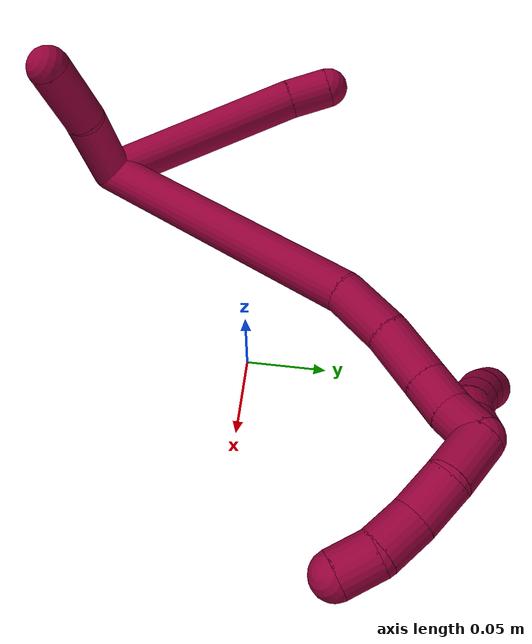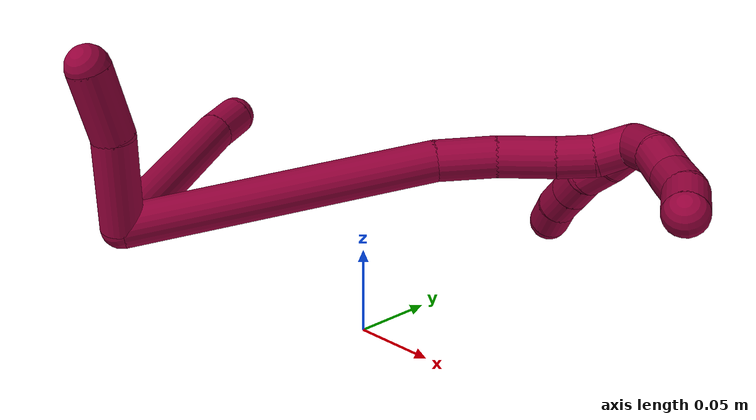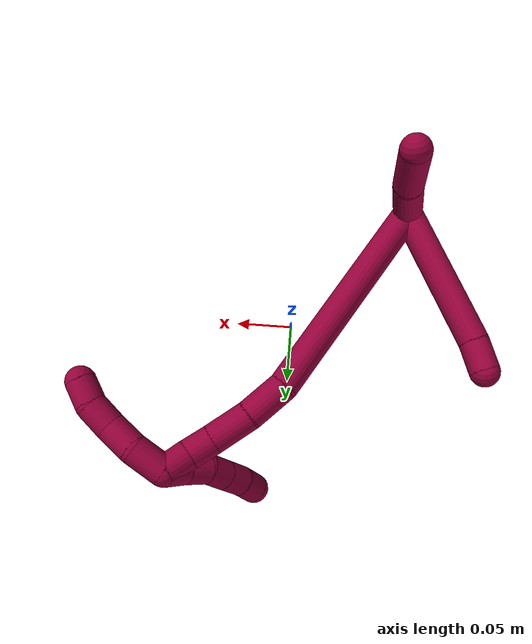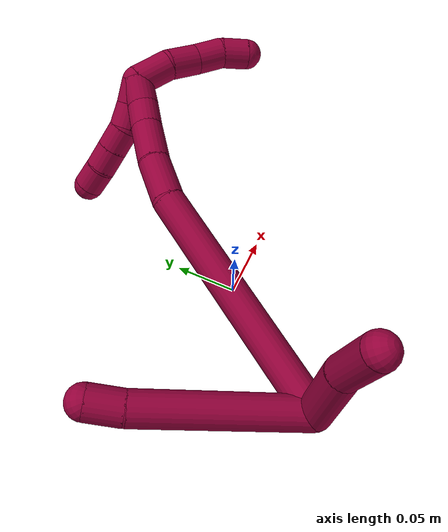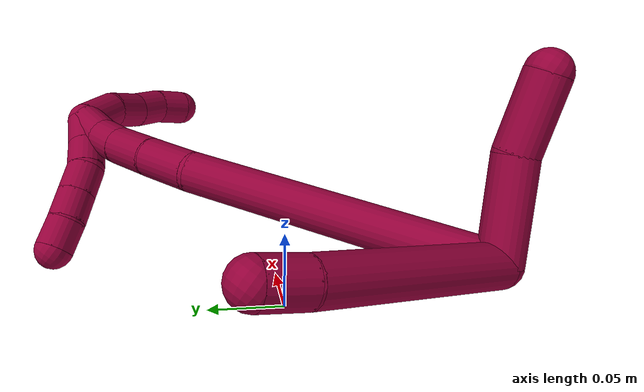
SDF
<sdf version="1.7">
 <world name="default">
  <model name="8">
   <static>0</static>
   <link name="8">
    <collision name="collision-cylinder-e_1_2_8">
     <pose>-0.02275 0.048056 -0.031876 -2.15648 -0.375766 0.680938</pose>
     <geometry><cylinder><radius>0.0125</radius><length>0.123984</length></cylinder></geometry>
     <surface>
      <friction><ode><mu>1.16</mu><mu2>1.16</mu2><slip1>0</slip1><slip2>0</slip2></ode></friction>
      <contact><ode><kp>1e+06</kp><kd>1</kd><max_vel>0</max_vel><min_depth>0.001</min_depth></ode></contact>
     </surface>
    </collision>
    <visual name="visual-cylinder-e_1_2_8">
     <pose>-0.02275 0.048056 -0.031876 -2.15648 -0.375766 0.680938</pose>
     <geometry><cylinder><radius>0.0125</radius><length>0.123984</length></cylinder></geometry>
     <material><ambient>0.584314 0 0.227451 1</ambient></material>
    </visual>
    <collision name="collision-cylinder-e_2_8_6">
     <pose>-0.048701 0.106791 -0.070454 -2.13123 -0.248586 0.444352</pose>
     <geometry><cylinder><radius>0.0125</radius><length>0.026016</length></cylinder></geometry>
     <surface>
      <friction><ode><mu>1.16</mu><mu2>1.16</mu2><slip1>0</slip1><slip2>0</slip2></ode></friction>
      <contact><ode><kp>1e+06</kp><kd>1</kd><max_vel>0</max_vel><min_depth>0.001</min_depth></ode></contact>
     </surface>
    </collision>
    <visual name="visual-cylinder-e_2_8_6">
     <pose>-0.048701 0.106791 -0.070454 -2.13123 -0.248586 0.444352</pose>
     <geometry><cylinder><radius>0.0125</radius><length>0.026016</length></cylinder></geometry>
     <material><ambient>0.584314 0 0.227451 1</ambient></material>
    </visual>
    <collision name="collision-cylinder-e_1_2_9">
     <pose>-0.00153 0.015076 0.024354 -0.554311 -0.053357 0.015182</pose>
     <geometry><cylinder><radius>0.0125</radius><length>0.057367</length></cylinder></geometry>
     <surface>
      <friction><ode><mu>1.16</mu><mu2>1.16</mu2><slip1>0</slip1><slip2>0</slip2></ode></friction>
      <contact><ode><kp>1e+06</kp><kd>1</kd><max_vel>0</max_vel><min_depth>0.001</min_depth></ode></contact>
     </surface>
    </collision>
    <visual name="visual-cylinder-e_1_2_9">
     <pose>-0.00153 0.015076 0.024354 -0.554311 -0.053357 0.015182</pose>
     <geometry><cylinder><radius>0.0125</radius><length>0.057367</length></cylinder></geometry>
     <material><ambient>0.584314 0 0.227451 1</ambient></material>
    </visual>
    <collision name="collision-cylinder-e_2_9_5">
     <pose>-0.006904 0.0378 0.06823 -0.373375 -0.181358 0.034347</pose>
     <geometry><cylinder><radius>0.0125</radius><length>0.042633</length></cylinder></geometry>
     <surface>
      <friction><ode><mu>1.16</mu><mu2>1.16</mu2><slip1>0</slip1><slip2>0</slip2></ode></friction>
      <contact><ode><kp>1e+06</kp><kd>1</kd><max_vel>0</max_vel><min_depth>0.001</min_depth></ode></contact>
     </surface>
    </collision>
    <visual name="visual-cylinder-e_2_9_5">
     <pose>-0.006904 0.0378 0.06823 -0.373375 -0.181358 0.034347</pose>
     <geometry><cylinder><radius>0.0125</radius><length>0.042633</length></cylinder></geometry>
     <material><ambient>0.584314 0 0.227451 1</ambient></material>
    </visual>
    <collision name="collision-cylinder-e_1_2_10">
     <pose>0.053439 0.070248 -0.02688 -1.93626 0.617725 -0.868423</pose>
     <geometry><cylinder><radius>0.0125</radius><length>0.184532</length></cylinder></geometry>
     <surface>
      <friction><ode><mu>1.16</mu><mu2>1.16</mu2><slip1>0</slip1><slip2>0</slip2></ode></friction>
      <contact><ode><kp>1e+06</kp><kd>1</kd><max_vel>0</max_vel><min_depth>0.001</min_depth></ode></contact>
     </surface>
    </collision>
    <visual name="visual-cylinder-e_1_2_10">
     <pose>0.053439 0.070248 -0.02688 -1.93626 0.617725 -0.868423</pose>
     <geometry><cylinder><radius>0.0125</radius><length>0.184532</length></cylinder></geometry>
     <material><ambient>0.584314 0 0.227451 1</ambient></material>
    </visual>
    <collision name="collision-cylinder-e_2_10_11">
     <pose>0.120644 0.151594 -0.057497 -1.89555 0.865926 -1.14333</pose>
     <geometry><cylinder><radius>0.0125</radius><length>0.036148</length></cylinder></geometry>
     <surface>
      <friction><ode><mu>1.16</mu><mu2>1.16</mu2><slip1>0</slip1><slip2>0</slip2></ode></friction>
      <contact><ode><kp>1e+06</kp><kd>1</kd><max_vel>0</max_vel><min_depth>0.001</min_depth></ode></contact>
     </surface>
    </collision>
    <visual name="visual-cylinder-e_2_10_11">
     <pose>0.120644 0.151594 -0.057497 -1.89555 0.865926 -1.14333</pose>
     <geometry><cylinder><radius>0.0125</radius><length>0.036148</length></cylinder></geometry>
     <material><ambient>0.584314 0 0.227451 1</ambient></material>
    </visual>
    <collision name="collision-cylinder-e_3_11_12">
     <pose>0.148831 0.171572 -0.064129 -1.88599 0.996061 -1.286</pose>
     <geometry><cylinder><radius>0.0125</radius><length>0.03436</length></cylinder></geometry>
     <surface>
      <friction><ode><mu>1.16</mu><mu2>1.16</mu2><slip1>0</slip1><slip2>0</slip2></ode></friction>
      <contact><ode><kp>1e+06</kp><kd>1</kd><max_vel>0</max_vel><min_depth>0.001</min_depth></ode></contact>
     </surface>
    </collision>
    <visual name="visual-cylinder-e_3_11_12">
     <pose>0.148831 0.171572 -0.064129 -1.88599 0.996061 -1.286</pose>
     <geometry><cylinder><radius>0.0125</radius><length>0.03436</length></cylinder></geometry>
     <material><ambient>0.584314 0 0.227451 1</ambient></material>
    </visual>
    <collision name="collision-cylinder-e_4_12_13">
     <pose>0.172582 0.186491 -0.068104 -1.74781 0.989075 -1.14464</pose>
     <geometry><cylinder><radius>0.0125</radius><length>0.022334</length></cylinder></geometry>
     <surface>
      <friction><ode><mu>1.16</mu><mu2>1.16</mu2><slip1>0</slip1><slip2>0</slip2></ode></friction>
      <contact><ode><kp>1e+06</kp><kd>1</kd><max_vel>0</max_vel><min_depth>0.001</min_depth></ode></contact>
     </surface>
    </collision>
    <visual name="visual-cylinder-e_4_12_13">
     <pose>0.172582 0.186491 -0.068104 -1.74781 0.989075 -1.14464</pose>
     <geometry><cylinder><radius>0.0125</radius><length>0.022334</length></cylinder></geometry>
     <material><ambient>0.584314 0 0.227451 1</ambient></material>
    </visual>
    <collision name="collision-cylinder-e_5_13_1">
     <pose>0.190038 0.200373 -0.068509 -1.48487 0.801371 -0.741425</pose>
     <geometry><cylinder><radius>0.0125</radius><length>0.022626</length></cylinder></geometry>
     <surface>
      <friction><ode><mu>1.16</mu><mu2>1.16</mu2><slip1>0</slip1><slip2>0</slip2></ode></friction>
      <contact><ode><kp>1e+06</kp><kd>1</kd><max_vel>0</max_vel><min_depth>0.001</min_depth></ode></contact>
     </surface>
    </collision>
    <visual name="visual-cylinder-e_5_13_1">
     <pose>0.190038 0.200373 -0.068509 -1.48487 0.801371 -0.741425</pose>
     <geometry><cylinder><radius>0.0125</radius><length>0.022626</length></cylinder></geometry>
     <material><ambient>0.584314 0 0.227451 1</ambient></material>
    </visual>
    <collision name="collision-cylinder-e_1_1_14">
     <pose>0.192485 0.203099 -0.074283 2.47093 -0.603897 -1.45873</pose>
     <geometry><cylinder><radius>0.0125</radius><length>0.02</length></cylinder></geometry>
     <surface>
      <friction><ode><mu>1.16</mu><mu2>1.16</mu2><slip1>0</slip1><slip2>0</slip2></ode></friction>
      <contact><ode><kp>1e+06</kp><kd>1</kd><max_vel>0</max_vel><min_depth>0.001</min_depth></ode></contact>
     </surface>
    </collision>
    <visual name="visual-cylinder-e_1_1_14">
     <pose>0.192485 0.203099 -0.074283 2.47093 -0.603897 -1.45873</pose>
     <geometry><cylinder><radius>0.0125</radius><length>0.02</length></cylinder></geometry>
     <material><ambient>0.584314 0 0.227451 1</ambient></material>
    </visual>
    <collision name="collision-cylinder-e_2_14_15">
     <pose>0.180307 0.193739 -0.087035 2.54902 -0.707611 -1.76018</pose>
     <geometry><cylinder><radius>0.0125</radius><length>0.02</length></cylinder></geometry>
     <surface>
      <friction><ode><mu>1.16</mu><mu2>1.16</mu2><slip1>0</slip1><slip2>0</slip2></ode></friction>
      <contact><ode><kp>1e+06</kp><kd>1</kd><max_vel>0</max_vel><min_depth>0.001</min_depth></ode></contact>
     </surface>
    </collision>
    <visual name="visual-cylinder-e_2_14_15">
     <pose>0.180307 0.193739 -0.087035 2.54902 -0.707611 -1.76018</pose>
     <geometry><cylinder><radius>0.0125</radius><length>0.02</length></cylinder></geometry>
     <material><ambient>0.584314 0 0.227451 1</ambient></material>
    </visual>
    <collision name="collision-cylinder-e_3_15_16">
     <pose>0.169089 0.187052 -0.10181 2.86084 -0.491223 -2.115</pose>
     <geometry><cylinder><radius>0.0125</radius><length>0.02</length></cylinder></geometry>
     <surface>
      <friction><ode><mu>1.16</mu><mu2>1.16</mu2><slip1>0</slip1><slip2>0</slip2></ode></friction>
      <contact><ode><kp>1e+06</kp><kd>1</kd><max_vel>0</max_vel><min_depth>0.001</min_depth></ode></contact>
     </surface>
    </collision>
    <visual name="visual-cylinder-e_3_15_16">
     <pose>0.169089 0.187052 -0.10181 2.86084 -0.491223 -2.115</pose>
     <geometry><cylinder><radius>0.0125</radius><length>0.02</length></cylinder></geometry>
     <material><ambient>0.584314 0 0.227451 1</ambient></material>
    </visual>
    <collision name="collision-cylinder-e_4_16_17">
     <pose>0.159654 0.18217 -0.118756 2.86137 -0.491399 -2.11693</pose>
     <geometry><cylinder><radius>0.0125</radius><length>0.02</length></cylinder></geometry>
     <surface>
      <friction><ode><mu>1.16</mu><mu2>1.16</mu2><slip1>0</slip1><slip2>0</slip2></ode></friction>
      <contact><ode><kp>1e+06</kp><kd>1</kd><max_vel>0</max_vel><min_depth>0.001</min_depth></ode></contact>
     </surface>
    </collision>
    <visual name="visual-cylinder-e_4_16_17">
     <pose>0.159654 0.18217 -0.118756 2.86137 -0.491399 -2.11693</pose>
     <geometry><cylinder><radius>0.0125</radius><length>0.02</length></cylinder></geometry>
     <material><ambient>0.584314 0 0.227451 1</ambient></material>
    </visual>
    <collision name="collision-cylinder-e_5_17_4">
     <pose>0.151544 0.177658 -0.136405 2.91934 -0.345943 -2.00488</pose>
     <geometry><cylinder><radius>0.0125</radius><length>0.02</length></cylinder></geometry>
     <surface>
      <friction><ode><mu>1.16</mu><mu2>1.16</mu2><slip1>0</slip1><slip2>0</slip2></ode></friction>
      <contact><ode><kp>1e+06</kp><kd>1</kd><max_vel>0</max_vel><min_depth>0.001</min_depth></ode></contact>
     </surface>
    </collision>
    <visual name="visual-cylinder-e_5_17_4">
     <pose>0.151544 0.177658 -0.136405 2.91934 -0.345943 -2.00488</pose>
     <geometry><cylinder><radius>0.0125</radius><length>0.02</length></cylinder></geometry>
     <material><ambient>0.584314 0 0.227451 1</ambient></material>
    </visual>
    <collision name="collision-cylinder-e_1_1_18">
     <pose>0.208906 0.203407 -0.059068 0.501645 0.821306 0.2222</pose>
     <geometry><cylinder><radius>0.0125</radius><length>0.029349</length></cylinder></geometry>
     <surface>
      <friction><ode><mu>1.16</mu><mu2>1.16</mu2><slip1>0</slip1><slip2>0</slip2></ode></friction>
      <contact><ode><kp>1e+06</kp><kd>1</kd><max_vel>0</max_vel><min_depth>0.001</min_depth></ode></contact>
     </surface>
    </collision>
    <visual name="visual-cylinder-e_1_1_18">
     <pose>0.208906 0.203407 -0.059068 0.501645 0.821306 0.2222</pose>
     <geometry><cylinder><radius>0.0125</radius><length>0.029349</length></cylinder></geometry>
     <material><ambient>0.584314 0 0.227451 1</ambient></material>
    </visual>
    <collision name="collision-cylinder-e_2_18_19">
     <pose>0.22877 0.191593 -0.045014 0.924196 0.804485 0.417615</pose>
     <geometry><cylinder><radius>0.0125</radius><length>0.025319</length></cylinder></geometry>
     <surface>
      <friction><ode><mu>1.16</mu><mu2>1.16</mu2><slip1>0</slip1><slip2>0</slip2></ode></friction>
      <contact><ode><kp>1e+06</kp><kd>1</kd><max_vel>0</max_vel><min_depth>0.001</min_depth></ode></contact>
     </surface>
    </collision>
    <visual name="visual-cylinder-e_2_18_19">
     <pose>0.22877 0.191593 -0.045014 0.924196 0.804485 0.417615</pose>
     <geometry><cylinder><radius>0.0125</radius><length>0.025319</length></cylinder></geometry>
     <material><ambient>0.584314 0 0.227451 1</ambient></material>
    </visual>
    <collision name="collision-cylinder-e_3_19_20">
     <pose>0.245524 0.178446 -0.033111 0.748268 0.702105 0.285619</pose>
     <geometry><cylinder><radius>0.0125</radius><length>0.023638</length></cylinder></geometry>
     <surface>
      <friction><ode><mu>1.16</mu><mu2>1.16</mu2><slip1>0</slip1><slip2>0</slip2></ode></friction>
      <contact><ode><kp>1e+06</kp><kd>1</kd><max_vel>0</max_vel><min_depth>0.001</min_depth></ode></contact>
     </surface>
    </collision>
    <visual name="visual-cylinder-e_3_19_20">
     <pose>0.245524 0.178446 -0.033111 0.748268 0.702105 0.285619</pose>
     <geometry><cylinder><radius>0.0125</radius><length>0.023638</length></cylinder></geometry>
     <material><ambient>0.584314 0 0.227451 1</ambient></material>
    </visual>
    <collision name="collision-cylinder-e_4_20_3">
     <pose>0.25785 0.16428 -0.020913 0.962898 0.447483 0.23666</pose>
     <geometry><cylinder><radius>0.0125</radius><length>0.021693</length></cylinder></geometry>
     <surface>
      <friction><ode><mu>1.16</mu><mu2>1.16</mu2><slip1>0</slip1><slip2>0</slip2></ode></friction>
      <contact><ode><kp>1e+06</kp><kd>1</kd><max_vel>0</max_vel><min_depth>0.001</min_depth></ode></contact>
     </surface>
    </collision>
    <visual name="visual-cylinder-e_4_20_3">
     <pose>0.25785 0.16428 -0.020913 0.962898 0.447483 0.23666</pose>
     <geometry><cylinder><radius>0.0125</radius><length>0.021693</length></cylinder></geometry>
     <material><ambient>0.584314 0 0.227451 1</ambient></material>
    </visual>
    <collision name="collision-sphere-3">
     <pose>0.262544 0.156253 -0.015328 0 -0 0</pose>
     <geometry><sphere><radius>0.0125</radius></sphere></geometry>
     <surface>
      <friction><ode><mu>1.16</mu><mu2>1.16</mu2><slip1>0</slip1><slip2>0</slip2></ode></friction>
      <contact><ode><kp>1e+06</kp><kd>1</kd><max_vel>0</max_vel><min_depth>0.001</min_depth></ode></contact>
     </surface>
    </collision>
    <visual name="visual-sphere-3">
     <pose>0.262544 0.156253 -0.015328 0 -0 0</pose>
     <geometry><sphere><radius>0.0125</radius></sphere></geometry>
     <material><ambient>0.584314 0 0.227451 1</ambient></material>
    </visual>
    <collision name="collision-sphere-20">
     <pose>0.253157 0.172307 -0.026498 0 -0 0</pose>
     <geometry><sphere><radius>0.0125</radius></sphere></geometry>
     <surface>
      <friction><ode><mu>1.16</mu><mu2>1.16</mu2><slip1>0</slip1><slip2>0</slip2></ode></friction>
      <contact><ode><kp>1e+06</kp><kd>1</kd><max_vel>0</max_vel><min_depth>0.001</min_depth></ode></contact>
     </surface>
    </collision>
    <visual name="visual-sphere-20">
     <pose>0.253157 0.172307 -0.026498 0 -0 0</pose>
     <geometry><sphere><radius>0.0125</radius></sphere></geometry>
     <material><ambient>0.584314 0 0.227451 1</ambient></material>
    </visual>
    <collision name="collision-sphere-19">
     <pose>0.237891 0.184586 -0.039724 0 -0 0</pose>
     <geometry><sphere><radius>0.0125</radius></sphere></geometry>
     <surface>
      <friction><ode><mu>1.16</mu><mu2>1.16</mu2><slip1>0</slip1><slip2>0</slip2></ode></friction>
      <contact><ode><kp>1e+06</kp><kd>1</kd><max_vel>0</max_vel><min_depth>0.001</min_depth></ode></contact>
     </surface>
    </collision>
    <visual name="visual-sphere-19">
     <pose>0.237891 0.184586 -0.039724 0 -0 0</pose>
     <geometry><sphere><radius>0.0125</radius></sphere></geometry>
     <material><ambient>0.584314 0 0.227451 1</ambient></material>
    </visual>
    <collision name="collision-sphere-10">
     <pose>0.106878 0.140496 -0.05376 0 -0 0</pose>
     <geometry><sphere><radius>0.0125</radius></sphere></geometry>
     <surface>
      <friction><ode><mu>1.16</mu><mu2>1.16</mu2><slip1>0</slip1><slip2>0</slip2></ode></friction>
      <contact><ode><kp>1e+06</kp><kd>1</kd><max_vel>0</max_vel><min_depth>0.001</min_depth></ode></contact>
     </surface>
    </collision>
    <visual name="visual-sphere-10">
     <pose>0.106878 0.140496 -0.05376 0 -0 0</pose>
     <geometry><sphere><radius>0.0125</radius></sphere></geometry>
     <material><ambient>0.584314 0 0.227451 1</ambient></material>
    </visual>
    <collision name="collision-sphere-5">
     <pose>-0.010749 0.045448 0.087752 0 -0 0</pose>
     <geometry><sphere><radius>0.0125</radius></sphere></geometry>
     <surface>
      <friction><ode><mu>1.16</mu><mu2>1.16</mu2><slip1>0</slip1><slip2>0</slip2></ode></friction>
      <contact><ode><kp>1e+06</kp><kd>1</kd><max_vel>0</max_vel><min_depth>0.001</min_depth></ode></contact>
     </surface>
    </collision>
    <visual name="visual-sphere-5">
     <pose>-0.010749 0.045448 0.087752 0 -0 0</pose>
     <geometry><sphere><radius>0.0125</radius></sphere></geometry>
     <material><ambient>0.584314 0 0.227451 1</ambient></material>
    </visual>
    <collision name="collision-sphere-6">
     <pose>-0.051901 0.11747 -0.077156 0 -0 0</pose>
     <geometry><sphere><radius>0.0125</radius></sphere></geometry>
     <surface>
      <friction><ode><mu>1.16</mu><mu2>1.16</mu2><slip1>0</slip1><slip2>0</slip2></ode></friction>
      <contact><ode><kp>1e+06</kp><kd>1</kd><max_vel>0</max_vel><min_depth>0.001</min_depth></ode></contact>
     </surface>
    </collision>
    <visual name="visual-sphere-6">
     <pose>-0.051901 0.11747 -0.077156 0 -0 0</pose>
     <geometry><sphere><radius>0.0125</radius></sphere></geometry>
     <material><ambient>0.584314 0 0.227451 1</ambient></material>
    </visual>
    <collision name="collision-sphere-9">
     <pose>-0.003059 0.030152 0.048707 0 -0 0</pose>
     <geometry><sphere><radius>0.0125</radius></sphere></geometry>
     <surface>
      <friction><ode><mu>1.16</mu><mu2>1.16</mu2><slip1>0</slip1><slip2>0</slip2></ode></friction>
      <contact><ode><kp>1e+06</kp><kd>1</kd><max_vel>0</max_vel><min_depth>0.001</min_depth></ode></contact>
     </surface>
    </collision>
    <visual name="visual-sphere-9">
     <pose>-0.003059 0.030152 0.048707 0 -0 0</pose>
     <geometry><sphere><radius>0.0125</radius></sphere></geometry>
     <material><ambient>0.584314 0 0.227451 1</ambient></material>
    </visual>
    <collision name="collision-sphere-2">
     <geometry><sphere><radius>0.0125</radius></sphere></geometry>
     <surface>
      <friction><ode><mu>1.16</mu><mu2>1.16</mu2><slip1>0</slip1><slip2>0</slip2></ode></friction>
      <contact><ode><kp>1e+06</kp><kd>1</kd><max_vel>0</max_vel><min_depth>0.001</min_depth></ode></contact>
     </surface>
    </collision>
    <visual name="visual-sphere-2">
     <geometry><sphere><radius>0.0125</radius></sphere></geometry>
     <material><ambient>0.584314 0 0.227451 1</ambient></material>
    </visual>
    <collision name="collision-sphere-8">
     <pose>-0.0455 0.096111 -0.063752 0 -0 0</pose>
     <geometry><sphere><radius>0.0125</radius></sphere></geometry>
     <surface>
      <friction><ode><mu>1.16</mu><mu2>1.16</mu2><slip1>0</slip1><slip2>0</slip2></ode></friction>
      <contact><ode><kp>1e+06</kp><kd>1</kd><max_vel>0</max_vel><min_depth>0.001</min_depth></ode></contact>
     </surface>
    </collision>
    <visual name="visual-sphere-8">
     <pose>-0.0455 0.096111 -0.063752 0 -0 0</pose>
     <geometry><sphere><radius>0.0125</radius></sphere></geometry>
     <material><ambient>0.584314 0 0.227451 1</ambient></material>
    </visual>
    <collision name="collision-sphere-11">
     <pose>0.134411 0.162693 -0.061234 0 -0 0</pose>
     <geometry><sphere><radius>0.0125</radius></sphere></geometry>
     <surface>
      <friction><ode><mu>1.16</mu><mu2>1.16</mu2><slip1>0</slip1><slip2>0</slip2></ode></friction>
      <contact><ode><kp>1e+06</kp><kd>1</kd><max_vel>0</max_vel><min_depth>0.001</min_depth></ode></contact>
     </surface>
    </collision>
    <visual name="visual-sphere-11">
     <pose>0.134411 0.162693 -0.061234 0 -0 0</pose>
     <geometry><sphere><radius>0.0125</radius></sphere></geometry>
     <material><ambient>0.584314 0 0.227451 1</ambient></material>
    </visual>
    <collision name="collision-sphere-12">
     <pose>0.163251 0.180452 -0.067024 0 -0 0</pose>
     <geometry><sphere><radius>0.0125</radius></sphere></geometry>
     <surface>
      <friction><ode><mu>1.16</mu><mu2>1.16</mu2><slip1>0</slip1><slip2>0</slip2></ode></friction>
      <contact><ode><kp>1e+06</kp><kd>1</kd><max_vel>0</max_vel><min_depth>0.001</min_depth></ode></contact>
     </surface>
    </collision>
    <visual name="visual-sphere-12">
     <pose>0.163251 0.180452 -0.067024 0 -0 0</pose>
     <geometry><sphere><radius>0.0125</radius></sphere></geometry>
     <material><ambient>0.584314 0 0.227451 1</ambient></material>
    </visual>
    <collision name="collision-sphere-13">
     <pose>0.181912 0.192531 -0.069185 0 -0 0</pose>
     <geometry><sphere><radius>0.0125</radius></sphere></geometry>
     <surface>
      <friction><ode><mu>1.16</mu><mu2>1.16</mu2><slip1>0</slip1><slip2>0</slip2></ode></friction>
      <contact><ode><kp>1e+06</kp><kd>1</kd><max_vel>0</max_vel><min_depth>0.001</min_depth></ode></contact>
     </surface>
    </collision>
    <visual name="visual-sphere-13">
     <pose>0.181912 0.192531 -0.069185 0 -0 0</pose>
     <geometry><sphere><radius>0.0125</radius></sphere></geometry>
     <material><ambient>0.584314 0 0.227451 1</ambient></material>
    </visual>
    <collision name="collision-sphere-1">
     <pose>0.198164 0.208215 -0.067834 0 -0 0</pose>
     <geometry><sphere><radius>0.0125</radius></sphere></geometry>
     <surface>
      <friction><ode><mu>1.16</mu><mu2>1.16</mu2><slip1>0</slip1><slip2>0</slip2></ode></friction>
      <contact><ode><kp>1e+06</kp><kd>1</kd><max_vel>0</max_vel><min_depth>0.001</min_depth></ode></contact>
     </surface>
    </collision>
    <visual name="visual-sphere-1">
     <pose>0.198164 0.208215 -0.067834 0 -0 0</pose>
     <geometry><sphere><radius>0.0125</radius></sphere></geometry>
     <material><ambient>0.584314 0 0.227451 1</ambient></material>
    </visual>
    <collision name="collision-sphere-18">
     <pose>0.219649 0.1986 -0.050303 0 -0 0</pose>
     <geometry><sphere><radius>0.0125</radius></sphere></geometry>
     <surface>
      <friction><ode><mu>1.16</mu><mu2>1.16</mu2><slip1>0</slip1><slip2>0</slip2></ode></friction>
      <contact><ode><kp>1e+06</kp><kd>1</kd><max_vel>0</max_vel><min_depth>0.001</min_depth></ode></contact>
     </surface>
    </collision>
    <visual name="visual-sphere-18">
     <pose>0.219649 0.1986 -0.050303 0 -0 0</pose>
     <geometry><sphere><radius>0.0125</radius></sphere></geometry>
     <material><ambient>0.584314 0 0.227451 1</ambient></material>
    </visual>
    <collision name="collision-sphere-14">
     <pose>0.186807 0.197983 -0.080731 0 -0 0</pose>
     <geometry><sphere><radius>0.0125</radius></sphere></geometry>
     <surface>
      <friction><ode><mu>1.16</mu><mu2>1.16</mu2><slip1>0</slip1><slip2>0</slip2></ode></friction>
      <contact><ode><kp>1e+06</kp><kd>1</kd><max_vel>0</max_vel><min_depth>0.001</min_depth></ode></contact>
     </surface>
    </collision>
    <visual name="visual-sphere-14">
     <pose>0.186807 0.197983 -0.080731 0 -0 0</pose>
     <geometry><sphere><radius>0.0125</radius></sphere></geometry>
     <material><ambient>0.584314 0 0.227451 1</ambient></material>
    </visual>
    <collision name="collision-sphere-15">
     <pose>0.173807 0.189495 -0.093338 0 -0 0</pose>
     <geometry><sphere><radius>0.0125</radius></sphere></geometry>
     <surface>
      <friction><ode><mu>1.16</mu><mu2>1.16</mu2><slip1>0</slip1><slip2>0</slip2></ode></friction>
      <contact><ode><kp>1e+06</kp><kd>1</kd><max_vel>0</max_vel><min_depth>0.001</min_depth></ode></contact>
     </surface>
    </collision>
    <visual name="visual-sphere-15">
     <pose>0.173807 0.189495 -0.093338 0 -0 0</pose>
     <geometry><sphere><radius>0.0125</radius></sphere></geometry>
     <material><ambient>0.584314 0 0.227451 1</ambient></material>
    </visual>
    <collision name="collision-sphere-16">
     <pose>0.164372 0.184609 -0.110283 0 -0 0</pose>
     <geometry><sphere><radius>0.0125</radius></sphere></geometry>
     <surface>
      <friction><ode><mu>1.16</mu><mu2>1.16</mu2><slip1>0</slip1><slip2>0</slip2></ode></friction>
      <contact><ode><kp>1e+06</kp><kd>1</kd><max_vel>0</max_vel><min_depth>0.001</min_depth></ode></contact>
     </surface>
    </collision>
    <visual name="visual-sphere-16">
     <pose>0.164372 0.184609 -0.110283 0 -0 0</pose>
     <geometry><sphere><radius>0.0125</radius></sphere></geometry>
     <material><ambient>0.584314 0 0.227451 1</ambient></material>
    </visual>
    <collision name="collision-sphere-17">
     <pose>0.154935 0.179732 -0.127228 0 -0 0</pose>
     <geometry><sphere><radius>0.0125</radius></sphere></geometry>
     <surface>
      <friction><ode><mu>1.16</mu><mu2>1.16</mu2><slip1>0</slip1><slip2>0</slip2></ode></friction>
      <contact><ode><kp>1e+06</kp><kd>1</kd><max_vel>0</max_vel><min_depth>0.001</min_depth></ode></contact>
     </surface>
    </collision>
    <visual name="visual-sphere-17">
     <pose>0.154935 0.179732 -0.127228 0 -0 0</pose>
     <geometry><sphere><radius>0.0125</radius></sphere></geometry>
     <material><ambient>0.584314 0 0.227451 1</ambient></material>
    </visual>
    <collision name="collision-sphere-4">
     <pose>0.148154 0.175584 -0.145581 0 -0 0</pose>
     <geometry><sphere><radius>0.0125</radius></sphere></geometry>
     <surface>
      <friction><ode><mu>1.16</mu><mu2>1.16</mu2><slip1>0</slip1><slip2>0</slip2></ode></friction>
      <contact><ode><kp>1e+06</kp><kd>1</kd><max_vel>0</max_vel><min_depth>0.001</min_depth></ode></contact>
     </surface>
    </collision>
    <visual name="visual-sphere-4">
     <pose>0.148154 0.175584 -0.145581 0 -0 0</pose>
     <geometry><sphere><radius>0.0125</radius></sphere></geometry>
     <material><ambient>0.584314 0 0.227451 1</ambient></material>
    </visual>
    <inertial>
     <pose>0.084537 0.108969 -0.03769 0 -0 0</pose>
     <mass>0.75</mass>
     <inertia>
      <ixx>0.000202</ixx>
      <ixy>0</ixy>
      <ixz>0</ixz>
      <iyy>-0.000122</iyy>
      <iyz>0</iyz>
      <izz>-0.000811</izz>
     </inertia>
    </inertial>
   </link>
   <pose>-0.093017 -0.098798 0.065294 0.701112 0.20726 0.128095</pose>
  </model>
 </world>
</sdf>
